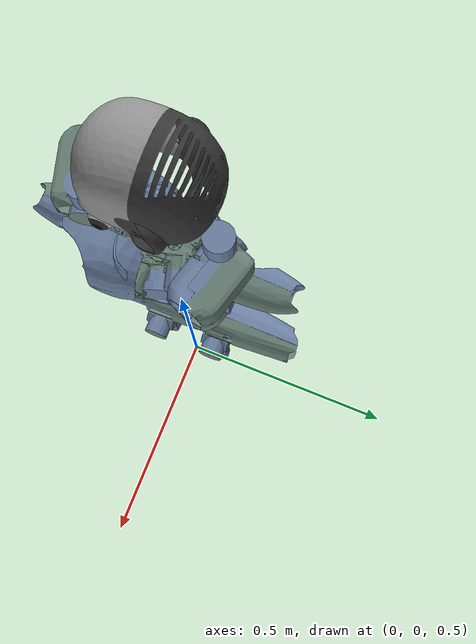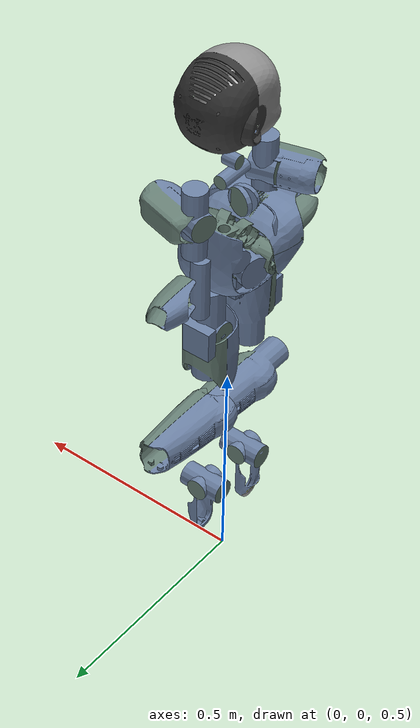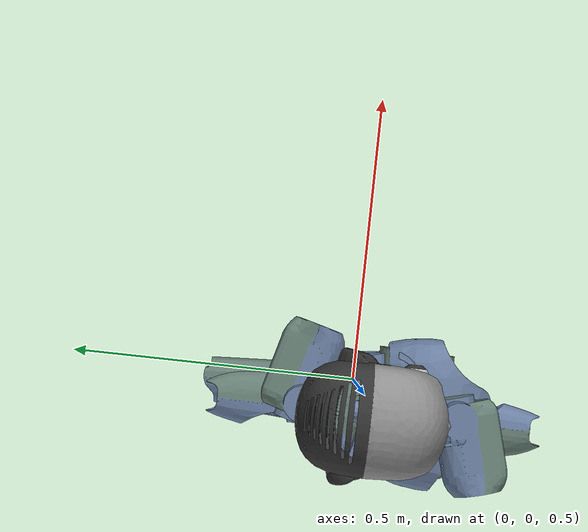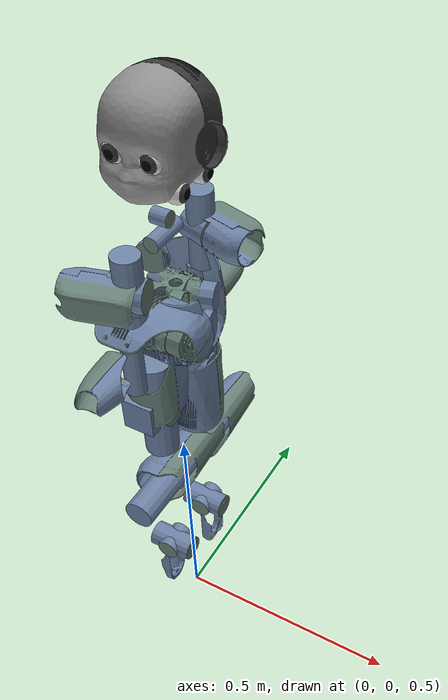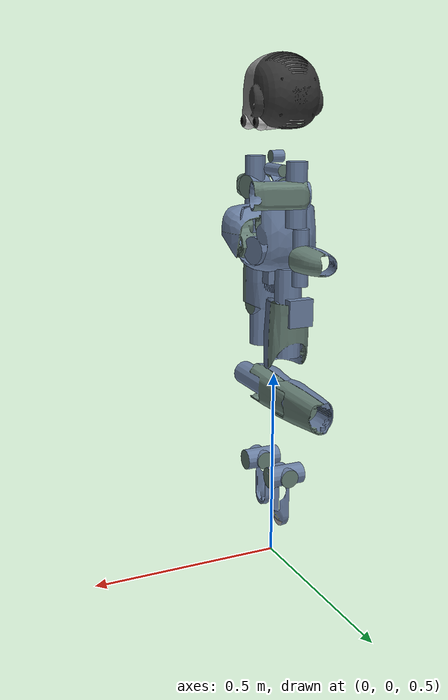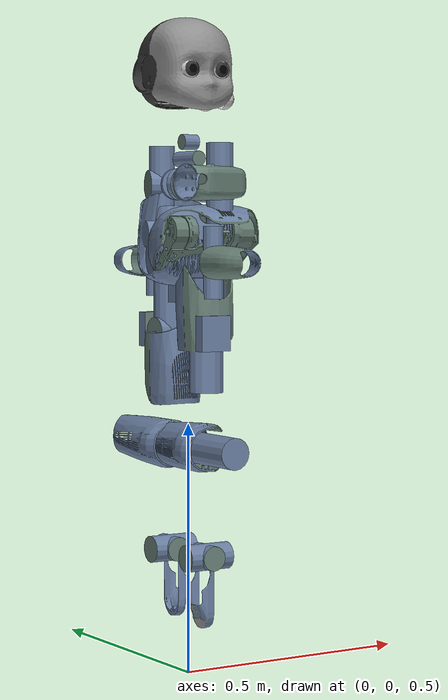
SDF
<?xml version='1.0'?>
<sdf version='1.4'>
  <model name="iCub">
    <include>
      <uri>model://icub_with_cameras</uri>
      <pose>0.0 0 0.6 0 0 3.14</pose>
    </include>

    <joint name="fixed right to ground" type="revolute">
      <parent>world</parent>
      <child>iCub::r_foot</child>
       <axis>
        <limit>
          <lower>0</lower>
          <upper>0</upper>
        </limit>
        <xyz>0 0 1</xyz>
        </axis>
    </joint>
    <joint name="fixed left to ground" type="revolute">
      <parent>world</parent>
      <child>iCub::l_foot</child>
       <axis>
        <limit>
          <lower>0</lower>
          <upper>0</upper>
        </limit>
        <xyz>0 0 1</xyz>
        </axis>
    </joint>

  </model>
</sdf>
